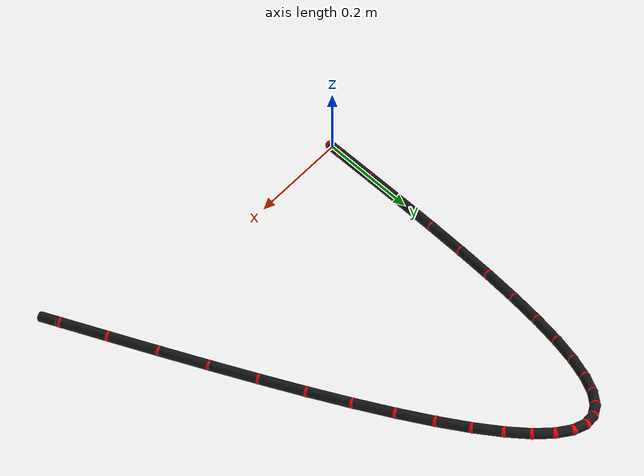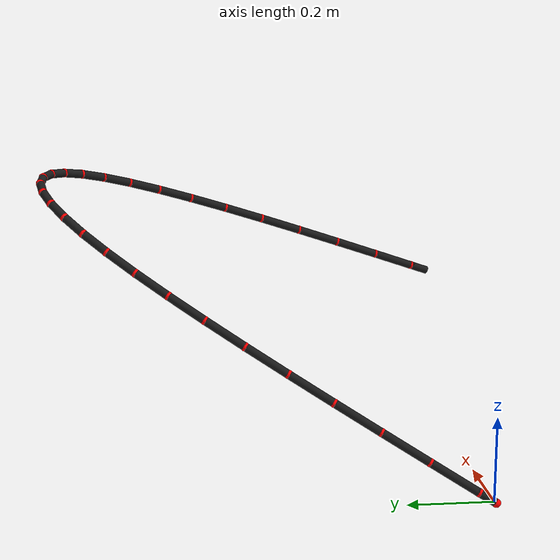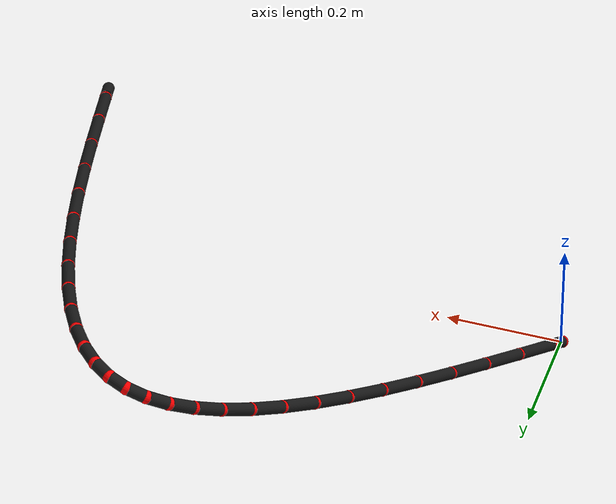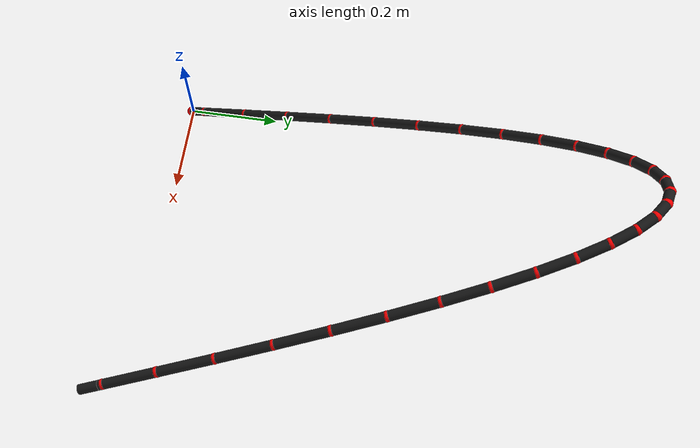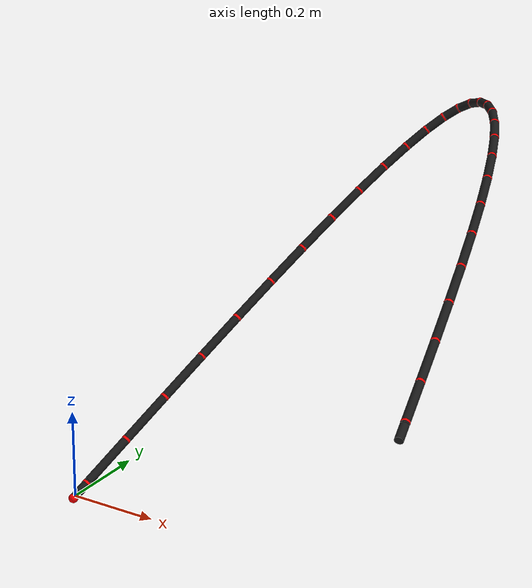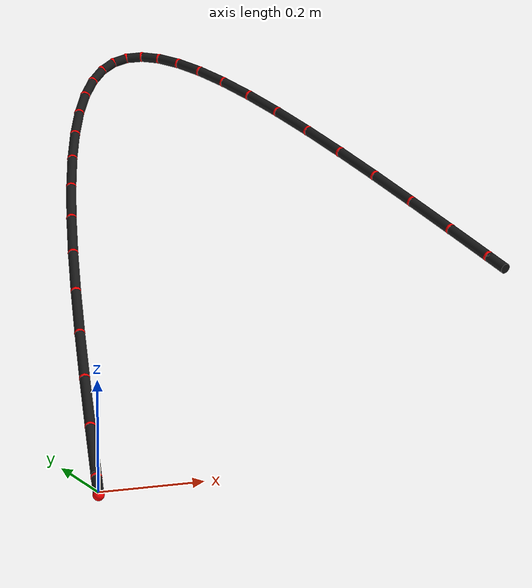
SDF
<?xml version="1.0" ?>
<sdf version="1.9">
    <model name="tether">
        <self_collide>true</self_collide>

        <link name="link_0">
            <pose>0.0040 0.0157 0.0096 0 1.0359 1.3214</pose>
            <velocity_decay>
                <linear>0.5</linear>
                <angular>0.5</angular>
            </velocity_decay>
            <inertial>
                <mass>0.02</mass>
                <inertia>
                    <ixx>0.1000</ixx><ixy>0</ixy><ixz>0</ixz>
                    <iyy>0.1000</iyy><iyz>0</iyz>
                    <izz>0.0100</izz>
                </inertia>
            </inertial>
            <visual name="visual_cylinder">
                <geometry><cylinder><radius>0.01</radius><length>0.0500</length></cylinder></geometry>
                <material><ambient>0.2 0.2 0.2 1</ambient><diffuse>0.1 0.1 0.1 1</diffuse></material>
            </visual>
            <visual name="visual_joint">
                <pose>0 0 -0.0250 0 0 0</pose>
                <geometry><sphere><radius>0.0105</radius></sphere></geometry>
                <material><ambient>1 0 0 1</ambient><diffuse>1 0 0 1</diffuse></material>
            </visual>
            <collision name="collision">
                <geometry><cylinder><radius>0.01</radius><length>0.0500</length></cylinder></geometry>
                <surface>
                    <contact><collide_bitmask>0x02</collide_bitmask></contact>
                </surface>
            </collision>
        </link>
        <link name="link_1">
            <pose>0.0220 0.0862 0.0527 0 1.0357 1.3204</pose>
            <velocity_decay>
                <linear>0.5</linear>
                <angular>0.5</angular>
            </velocity_decay>
            <inertial>
                <mass>0.02</mass>
                <inertia>
                    <ixx>0.1000</ixx><ixy>0</ixy><ixz>0</ixz>
                    <iyy>0.1000</iyy><iyz>0</iyz>
                    <izz>0.0100</izz>
                </inertia>
            </inertial>
            <visual name="visual_cylinder">
                <geometry><cylinder><radius>0.01</radius><length>0.1314</length></cylinder></geometry>
                <material><ambient>0.2 0.2 0.2 1</ambient><diffuse>0.1 0.1 0.1 1</diffuse></material>
            </visual>
            <visual name="visual_joint">
                <pose>0 0 -0.0657 0 0 0</pose>
                <geometry><sphere><radius>0.0105</radius></sphere></geometry>
                <material><ambient>1 0 0 1</ambient><diffuse>1 0 0 1</diffuse></material>
            </visual>
            <collision name="collision">
                <geometry><cylinder><radius>0.01</radius><length>0.1314</length></cylinder></geometry>
                <surface>
                    <contact><collide_bitmask>0x02</collide_bitmask></contact>
                </surface>
            </collision>
        </link>
        <joint name="joint_0_1" type="ball">
            <parent>link_0</parent>
            <child>link_1</child>
            <pose>0 0 -0.0657 0 0 0</pose>
            <dynamics>
                <damping>2.0</damping>
                <friction>0.1</friction>
            </dynamics>
        </joint>
        <link name="link_2">
            <pose>0.0500 0.1948 0.1193 0 1.0348 1.3166</pose>
            <velocity_decay>
                <linear>0.5</linear>
                <angular>0.5</angular>
            </velocity_decay>
            <inertial>
                <mass>0.02</mass>
                <inertia>
                    <ixx>0.1000</ixx><ixy>0</ixy><ixz>0</ixz>
                    <iyy>0.1000</iyy><iyz>0</iyz>
                    <izz>0.0100</izz>
                </inertia>
            </inertial>
            <visual name="visual_cylinder">
                <geometry><cylinder><radius>0.01</radius><length>0.1295</length></cylinder></geometry>
                <material><ambient>0.2 0.2 0.2 1</ambient><diffuse>0.1 0.1 0.1 1</diffuse></material>
            </visual>
            <visual name="visual_joint">
                <pose>0 0 -0.0648 0 0 0</pose>
                <geometry><sphere><radius>0.0105</radius></sphere></geometry>
                <material><ambient>1 0 0 1</ambient><diffuse>1 0 0 1</diffuse></material>
            </visual>
            <collision name="collision">
                <geometry><cylinder><radius>0.01</radius><length>0.1295</length></cylinder></geometry>
                <surface>
                    <contact><collide_bitmask>0x02</collide_bitmask></contact>
                </surface>
            </collision>
        </link>
        <joint name="joint_1_2" type="ball">
            <parent>link_1</parent>
            <child>link_2</child>
            <pose>0 0 -0.0648 0 0 0</pose>
            <dynamics>
                <damping>2.0</damping>
                <friction>0.1</friction>
            </dynamics>
        </joint>
        <link name="link_3">
            <pose>0.0780 0.3011 0.1847 0 1.0333 1.3097</pose>
            <velocity_decay>
                <linear>0.5</linear>
                <angular>0.5</angular>
            </velocity_decay>
            <inertial>
                <mass>0.02</mass>
                <inertia>
                    <ixx>0.1000</ixx><ixy>0</ixy><ixz>0</ixz>
                    <iyy>0.1000</iyy><iyz>0</iyz>
                    <izz>0.0100</izz>
                </inertia>
            </inertial>
            <visual name="visual_cylinder">
                <geometry><cylinder><radius>0.01</radius><length>0.1263</length></cylinder></geometry>
                <material><ambient>0.2 0.2 0.2 1</ambient><diffuse>0.1 0.1 0.1 1</diffuse></material>
            </visual>
            <visual name="visual_joint">
                <pose>0 0 -0.0631 0 0 0</pose>
                <geometry><sphere><radius>0.0105</radius></sphere></geometry>
                <material><ambient>1 0 0 1</ambient><diffuse>1 0 0 1</diffuse></material>
            </visual>
            <collision name="collision">
                <geometry><cylinder><radius>0.01</radius><length>0.1263</length></cylinder></geometry>
                <surface>
                    <contact><collide_bitmask>0x02</collide_bitmask></contact>
                </surface>
            </collision>
        </link>
        <joint name="joint_2_3" type="ball">
            <parent>link_2</parent>
            <child>link_3</child>
            <pose>0 0 -0.0631 0 0 0</pose>
            <dynamics>
                <damping>2.0</damping>
                <friction>0.1</friction>
            </dynamics>
        </joint>
        <link name="link_4">
            <pose>0.1060 0.4037 0.2482 0 1.0311 1.2991</pose>
            <velocity_decay>
                <linear>0.5</linear>
                <angular>0.5</angular>
            </velocity_decay>
            <inertial>
                <mass>0.02</mass>
                <inertia>
                    <ixx>0.1000</ixx><ixy>0</ixy><ixz>0</ixz>
                    <iyy>0.1000</iyy><iyz>0</iyz>
                    <izz>0.0100</izz>
                </inertia>
            </inertial>
            <visual name="visual_cylinder">
                <geometry><cylinder><radius>0.01</radius><length>0.1216</length></cylinder></geometry>
                <material><ambient>0.2 0.2 0.2 1</ambient><diffuse>0.1 0.1 0.1 1</diffuse></material>
            </visual>
            <visual name="visual_joint">
                <pose>0 0 -0.0608 0 0 0</pose>
                <geometry><sphere><radius>0.0105</radius></sphere></geometry>
                <material><ambient>1 0 0 1</ambient><diffuse>1 0 0 1</diffuse></material>
            </visual>
            <collision name="collision">
                <geometry><cylinder><radius>0.01</radius><length>0.1216</length></cylinder></geometry>
                <surface>
                    <contact><collide_bitmask>0x02</collide_bitmask></contact>
                </surface>
            </collision>
        </link>
        <joint name="joint_3_4" type="ball">
            <parent>link_3</parent>
            <child>link_4</child>
            <pose>0 0 -0.0608 0 0 0</pose>
            <dynamics>
                <damping>2.0</damping>
                <friction>0.1</friction>
            </dynamics>
        </joint>
        <link name="link_5">
            <pose>0.1340 0.5015 0.3094 0 1.0280 1.2843</pose>
            <velocity_decay>
                <linear>0.5</linear>
                <angular>0.5</angular>
            </velocity_decay>
            <inertial>
                <mass>0.02</mass>
                <inertia>
                    <ixx>0.1000</ixx><ixy>0</ixy><ixz>0</ixz>
                    <iyy>0.1000</iyy><iyz>0</iyz>
                    <izz>0.0100</izz>
                </inertia>
            </inertial>
            <visual name="visual_cylinder">
                <geometry><cylinder><radius>0.01</radius><length>0.1157</length></cylinder></geometry>
                <material><ambient>0.2 0.2 0.2 1</ambient><diffuse>0.1 0.1 0.1 1</diffuse></material>
            </visual>
            <visual name="visual_joint">
                <pose>0 0 -0.0579 0 0 0</pose>
                <geometry><sphere><radius>0.0105</radius></sphere></geometry>
                <material><ambient>1 0 0 1</ambient><diffuse>1 0 0 1</diffuse></material>
            </visual>
            <collision name="collision">
                <geometry><cylinder><radius>0.01</radius><length>0.1157</length></cylinder></geometry>
                <surface>
                    <contact><collide_bitmask>0x02</collide_bitmask></contact>
                </surface>
            </collision>
        </link>
        <joint name="joint_4_5" type="ball">
            <parent>link_4</parent>
            <child>link_5</child>
            <pose>0 0 -0.0579 0 0 0</pose>
            <dynamics>
                <damping>2.0</damping>
                <friction>0.1</friction>
            </dynamics>
        </joint>
        <link name="link_6">
            <pose>0.1620 0.5932 0.3675 0 1.0240 1.2641</pose>
            <velocity_decay>
                <linear>0.5</linear>
                <angular>0.5</angular>
            </velocity_decay>
            <inertial>
                <mass>0.02</mass>
                <inertia>
                    <ixx>0.1000</ixx><ixy>0</ixy><ixz>0</ixz>
                    <iyy>0.1000</iyy><iyz>0</iyz>
                    <izz>0.0100</izz>
                </inertia>
            </inertial>
            <visual name="visual_cylinder">
                <geometry><cylinder><radius>0.01</radius><length>0.1086</length></cylinder></geometry>
                <material><ambient>0.2 0.2 0.2 1</ambient><diffuse>0.1 0.1 0.1 1</diffuse></material>
            </visual>
            <visual name="visual_joint">
                <pose>0 0 -0.0543 0 0 0</pose>
                <geometry><sphere><radius>0.0105</radius></sphere></geometry>
                <material><ambient>1 0 0 1</ambient><diffuse>1 0 0 1</diffuse></material>
            </visual>
            <collision name="collision">
                <geometry><cylinder><radius>0.01</radius><length>0.1086</length></cylinder></geometry>
                <surface>
                    <contact><collide_bitmask>0x02</collide_bitmask></contact>
                </surface>
            </collision>
        </link>
        <joint name="joint_5_6" type="ball">
            <parent>link_5</parent>
            <child>link_6</child>
            <pose>0 0 -0.0543 0 0 0</pose>
            <dynamics>
                <damping>2.0</damping>
                <friction>0.1</friction>
            </dynamics>
        </joint>
        <link name="link_7">
            <pose>0.1900 0.6778 0.4220 0 1.0189 1.2368</pose>
            <velocity_decay>
                <linear>0.5</linear>
                <angular>0.5</angular>
            </velocity_decay>
            <inertial>
                <mass>0.02</mass>
                <inertia>
                    <ixx>0.1000</ixx><ixy>0</ixy><ixz>0</ixz>
                    <iyy>0.1000</iyy><iyz>0</iyz>
                    <izz>0.0100</izz>
                </inertia>
            </inertial>
            <visual name="visual_cylinder">
                <geometry><cylinder><radius>0.01</radius><length>0.1003</length></cylinder></geometry>
                <material><ambient>0.2 0.2 0.2 1</ambient><diffuse>0.1 0.1 0.1 1</diffuse></material>
            </visual>
            <visual name="visual_joint">
                <pose>0 0 -0.0502 0 0 0</pose>
                <geometry><sphere><radius>0.0105</radius></sphere></geometry>
                <material><ambient>1 0 0 1</ambient><diffuse>1 0 0 1</diffuse></material>
            </visual>
            <collision name="collision">
                <geometry><cylinder><radius>0.01</radius><length>0.1003</length></cylinder></geometry>
                <surface>
                    <contact><collide_bitmask>0x02</collide_bitmask></contact>
                </surface>
            </collision>
        </link>
        <joint name="joint_6_7" type="ball">
            <parent>link_6</parent>
            <child>link_7</child>
            <pose>0 0 -0.0502 0 0 0</pose>
            <dynamics>
                <damping>2.0</damping>
                <friction>0.1</friction>
            </dynamics>
        </joint>
        <link name="link_8">
            <pose>0.2180 0.7541 0.4724 0 1.0125 1.2000</pose>
            <velocity_decay>
                <linear>0.5</linear>
                <angular>0.5</angular>
            </velocity_decay>
            <inertial>
                <mass>0.02</mass>
                <inertia>
                    <ixx>0.1000</ixx><ixy>0</ixy><ixz>0</ixz>
                    <iyy>0.1000</iyy><iyz>0</iyz>
                    <izz>0.0100</izz>
                </inertia>
            </inertial>
            <visual name="visual_cylinder">
                <geometry><cylinder><radius>0.01</radius><length>0.0911</length></cylinder></geometry>
                <material><ambient>0.2 0.2 0.2 1</ambient><diffuse>0.1 0.1 0.1 1</diffuse></material>
            </visual>
            <visual name="visual_joint">
                <pose>0 0 -0.0456 0 0 0</pose>
                <geometry><sphere><radius>0.0105</radius></sphere></geometry>
                <material><ambient>1 0 0 1</ambient><diffuse>1 0 0 1</diffuse></material>
            </visual>
            <collision name="collision">
                <geometry><cylinder><radius>0.01</radius><length>0.0911</length></cylinder></geometry>
                <surface>
                    <contact><collide_bitmask>0x02</collide_bitmask></contact>
                </surface>
            </collision>
        </link>
        <joint name="joint_7_8" type="ball">
            <parent>link_7</parent>
            <child>link_8</child>
            <pose>0 0 -0.0456 0 0 0</pose>
            <dynamics>
                <damping>2.0</damping>
                <friction>0.1</friction>
            </dynamics>
        </joint>
        <link name="link_9">
            <pose>0.2460 0.8214 0.5183 0 1.0049 1.1495</pose>
            <velocity_decay>
                <linear>0.5</linear>
                <angular>0.5</angular>
            </velocity_decay>
            <inertial>
                <mass>0.02</mass>
                <inertia>
                    <ixx>0.1000</ixx><ixy>0</ixy><ixz>0</ixz>
                    <iyy>0.1000</iyy><iyz>0</iyz>
                    <izz>0.0100</izz>
                </inertia>
            </inertial>
            <visual name="visual_cylinder">
                <geometry><cylinder><radius>0.01</radius><length>0.0811</length></cylinder></geometry>
                <material><ambient>0.2 0.2 0.2 1</ambient><diffuse>0.1 0.1 0.1 1</diffuse></material>
            </visual>
            <visual name="visual_joint">
                <pose>0 0 -0.0406 0 0 0</pose>
                <geometry><sphere><radius>0.0105</radius></sphere></geometry>
                <material><ambient>1 0 0 1</ambient><diffuse>1 0 0 1</diffuse></material>
            </visual>
            <collision name="collision">
                <geometry><cylinder><radius>0.01</radius><length>0.0811</length></cylinder></geometry>
                <surface>
                    <contact><collide_bitmask>0x02</collide_bitmask></contact>
                </surface>
            </collision>
        </link>
        <joint name="joint_8_9" type="ball">
            <parent>link_8</parent>
            <child>link_9</child>
            <pose>0 0 -0.0406 0 0 0</pose>
            <dynamics>
                <damping>2.0</damping>
                <friction>0.1</friction>
            </dynamics>
        </joint>
        <link name="link_10">
            <pose>0.2740 0.8787 0.5592 0 0.9962 1.0784</pose>
            <velocity_decay>
                <linear>0.5</linear>
                <angular>0.5</angular>
            </velocity_decay>
            <inertial>
                <mass>0.02</mass>
                <inertia>
                    <ixx>0.1000</ixx><ixy>0</ixy><ixz>0</ixz>
                    <iyy>0.1000</iyy><iyz>0</iyz>
                    <izz>0.0100</izz>
                </inertia>
            </inertial>
            <visual name="visual_cylinder">
                <geometry><cylinder><radius>0.01</radius><length>0.0706</length></cylinder></geometry>
                <material><ambient>0.2 0.2 0.2 1</ambient><diffuse>0.1 0.1 0.1 1</diffuse></material>
            </visual>
            <visual name="visual_joint">
                <pose>0 0 -0.0353 0 0 0</pose>
                <geometry><sphere><radius>0.0105</radius></sphere></geometry>
                <material><ambient>1 0 0 1</ambient><diffuse>1 0 0 1</diffuse></material>
            </visual>
            <collision name="collision">
                <geometry><cylinder><radius>0.01</radius><length>0.0706</length></cylinder></geometry>
                <surface>
                    <contact><collide_bitmask>0x02</collide_bitmask></contact>
                </surface>
            </collision>
        </link>
        <joint name="joint_9_10" type="ball">
            <parent>link_9</parent>
            <child>link_10</child>
            <pose>0 0 -0.0353 0 0 0</pose>
            <dynamics>
                <damping>2.0</damping>
                <friction>0.1</friction>
            </dynamics>
        </joint>
        <link name="link_11">
            <pose>0.3020 0.9255 0.5949 0 0.9878 0.9745</pose>
            <velocity_decay>
                <linear>0.5</linear>
                <angular>0.5</angular>
            </velocity_decay>
            <inertial>
                <mass>0.02</mass>
                <inertia>
                    <ixx>0.1000</ixx><ixy>0</ixy><ixz>0</ixz>
                    <iyy>0.1000</iyy><iyz>0</iyz>
                    <izz>0.0100</izz>
                </inertia>
            </inertial>
            <visual name="visual_cylinder">
                <geometry><cylinder><radius>0.01</radius><length>0.0597</length></cylinder></geometry>
                <material><ambient>0.2 0.2 0.2 1</ambient><diffuse>0.1 0.1 0.1 1</diffuse></material>
            </visual>
            <visual name="visual_joint">
                <pose>0 0 -0.0299 0 0 0</pose>
                <geometry><sphere><radius>0.0105</radius></sphere></geometry>
                <material><ambient>1 0 0 1</ambient><diffuse>1 0 0 1</diffuse></material>
            </visual>
            <collision name="collision">
                <geometry><cylinder><radius>0.01</radius><length>0.0597</length></cylinder></geometry>
                <surface>
                    <contact><collide_bitmask>0x02</collide_bitmask></contact>
                </surface>
            </collision>
        </link>
        <joint name="joint_10_11" type="ball">
            <parent>link_10</parent>
            <child>link_11</child>
            <pose>0 0 -0.0299 0 0 0</pose>
            <dynamics>
                <damping>2.0</damping>
                <friction>0.1</friction>
            </dynamics>
        </joint>
        <link name="link_12">
            <pose>0.3300 0.9610 0.6249 0 0.9847 0.8171</pose>
            <velocity_decay>
                <linear>0.5</linear>
                <angular>0.5</angular>
            </velocity_decay>
            <inertial>
                <mass>0.02</mass>
                <inertia>
                    <ixx>0.1000</ixx><ixy>0</ixy><ixz>0</ixz>
                    <iyy>0.1000</iyy><iyz>0</iyz>
                    <izz>0.0100</izz>
                </inertia>
            </inertial>
            <visual name="visual_cylinder">
                <geometry><cylinder><radius>0.01</radius><length>0.0491</length></cylinder></geometry>
                <material><ambient>0.2 0.2 0.2 1</ambient><diffuse>0.1 0.1 0.1 1</diffuse></material>
            </visual>
            <visual name="visual_joint">
                <pose>0 0 -0.0246 0 0 0</pose>
                <geometry><sphere><radius>0.0105</radius></sphere></geometry>
                <material><ambient>1 0 0 1</ambient><diffuse>1 0 0 1</diffuse></material>
            </visual>
            <collision name="collision">
                <geometry><cylinder><radius>0.01</radius><length>0.0491</length></cylinder></geometry>
                <surface>
                    <contact><collide_bitmask>0x02</collide_bitmask></contact>
                </surface>
            </collision>
        </link>
        <joint name="joint_11_12" type="ball">
            <parent>link_11</parent>
            <child>link_12</child>
            <pose>0 0 -0.0246 0 0 0</pose>
            <dynamics>
                <damping>2.0</damping>
                <friction>0.1</friction>
            </dynamics>
        </joint>
        <link name="link_13">
            <pose>0.3580 0.9849 0.6491 0 1.0025 0.5725</pose>
            <velocity_decay>
                <linear>0.5</linear>
                <angular>0.5</angular>
            </velocity_decay>
            <inertial>
                <mass>0.02</mass>
                <inertia>
                    <ixx>0.1000</ixx><ixy>0</ixy><ixz>0</ixz>
                    <iyy>0.1000</iyy><iyz>0</iyz>
                    <izz>0.0100</izz>
                </inertia>
            </inertial>
            <visual name="visual_cylinder">
                <geometry><cylinder><radius>0.01</radius><length>0.0395</length></cylinder></geometry>
                <material><ambient>0.2 0.2 0.2 1</ambient><diffuse>0.1 0.1 0.1 1</diffuse></material>
            </visual>
            <visual name="visual_joint">
                <pose>0 0 -0.0198 0 0 0</pose>
                <geometry><sphere><radius>0.0105</radius></sphere></geometry>
                <material><ambient>1 0 0 1</ambient><diffuse>1 0 0 1</diffuse></material>
            </visual>
            <collision name="collision">
                <geometry><cylinder><radius>0.01</radius><length>0.0395</length></cylinder></geometry>
                <surface>
                    <contact><collide_bitmask>0x02</collide_bitmask></contact>
                </surface>
            </collision>
        </link>
        <joint name="joint_12_13" type="ball">
            <parent>link_12</parent>
            <child>link_13</child>
            <pose>0 0 -0.0198 0 0 0</pose>
            <dynamics>
                <damping>2.0</damping>
                <friction>0.1</friction>
            </dynamics>
        </joint>
        <link name="link_14">
            <pose>0.3860 0.9970 0.6674 0 1.0810 0.2124</pose>
            <velocity_decay>
                <linear>0.5</linear>
                <angular>0.5</angular>
            </velocity_decay>
            <inertial>
                <mass>0.02</mass>
                <inertia>
                    <ixx>0.1000</ixx><ixy>0</ixy><ixz>0</ixz>
                    <iyy>0.1000</iyy><iyz>0</iyz>
                    <izz>0.0100</izz>
                </inertia>
            </inertial>
            <visual name="visual_cylinder">
                <geometry><cylinder><radius>0.01</radius><length>0.0325</length></cylinder></geometry>
                <material><ambient>0.2 0.2 0.2 1</ambient><diffuse>0.1 0.1 0.1 1</diffuse></material>
            </visual>
            <visual name="visual_joint">
                <pose>0 0 -0.0162 0 0 0</pose>
                <geometry><sphere><radius>0.0105</radius></sphere></geometry>
                <material><ambient>1 0 0 1</ambient><diffuse>1 0 0 1</diffuse></material>
            </visual>
            <collision name="collision">
                <geometry><cylinder><radius>0.01</radius><length>0.0325</length></cylinder></geometry>
                <surface>
                    <contact><collide_bitmask>0x02</collide_bitmask></contact>
                </surface>
            </collision>
        </link>
        <joint name="joint_13_14" type="ball">
            <parent>link_13</parent>
            <child>link_14</child>
            <pose>0 0 -0.0162 0 0 0</pose>
            <dynamics>
                <damping>2.0</damping>
                <friction>0.1</friction>
            </dynamics>
        </joint>
        <link name="link_15">
            <pose>0.4140 0.9970 0.6796 0 1.2591 -0.2124</pose>
            <velocity_decay>
                <linear>0.5</linear>
                <angular>0.5</angular>
            </velocity_decay>
            <inertial>
                <mass>0.02</mass>
                <inertia>
                    <ixx>0.1000</ixx><ixy>0</ixy><ixz>0</ixz>
                    <iyy>0.1000</iyy><iyz>0</iyz>
                    <izz>0.0100</izz>
                </inertia>
            </inertial>
            <visual name="visual_cylinder">
                <geometry><cylinder><radius>0.01</radius><length>0.0301</length></cylinder></geometry>
                <material><ambient>0.2 0.2 0.2 1</ambient><diffuse>0.1 0.1 0.1 1</diffuse></material>
            </visual>
            <visual name="visual_joint">
                <pose>0 0 -0.0150 0 0 0</pose>
                <geometry><sphere><radius>0.0105</radius></sphere></geometry>
                <material><ambient>1 0 0 1</ambient><diffuse>1 0 0 1</diffuse></material>
            </visual>
            <collision name="collision">
                <geometry><cylinder><radius>0.01</radius><length>0.0301</length></cylinder></geometry>
                <surface>
                    <contact><collide_bitmask>0x02</collide_bitmask></contact>
                </surface>
            </collision>
        </link>
        <joint name="joint_14_15" type="ball">
            <parent>link_14</parent>
            <child>link_15</child>
            <pose>0 0 -0.0150 0 0 0</pose>
            <dynamics>
                <damping>2.0</damping>
                <friction>0.1</friction>
            </dynamics>
        </joint>
        <link name="link_16">
            <pose>0.4420 0.9849 0.6858 0 1.4742 -0.5725</pose>
            <velocity_decay>
                <linear>0.5</linear>
                <angular>0.5</angular>
            </velocity_decay>
            <inertial>
                <mass>0.02</mass>
                <inertia>
                    <ixx>0.1000</ixx><ixy>0</ixy><ixz>0</ixz>
                    <iyy>0.1000</iyy><iyz>0</iyz>
                    <izz>0.0100</izz>
                </inertia>
            </inertial>
            <visual name="visual_cylinder">
                <geometry><cylinder><radius>0.01</radius><length>0.0335</length></cylinder></geometry>
                <material><ambient>0.2 0.2 0.2 1</ambient><diffuse>0.1 0.1 0.1 1</diffuse></material>
            </visual>
            <visual name="visual_joint">
                <pose>0 0 -0.0167 0 0 0</pose>
                <geometry><sphere><radius>0.0105</radius></sphere></geometry>
                <material><ambient>1 0 0 1</ambient><diffuse>1 0 0 1</diffuse></material>
            </visual>
            <collision name="collision">
                <geometry><cylinder><radius>0.01</radius><length>0.0335</length></cylinder></geometry>
                <surface>
                    <contact><collide_bitmask>0x02</collide_bitmask></contact>
                </surface>
            </collision>
        </link>
        <joint name="joint_15_16" type="ball">
            <parent>link_15</parent>
            <child>link_16</child>
            <pose>0 0 -0.0167 0 0 0</pose>
            <dynamics>
                <damping>2.0</damping>
                <friction>0.1</friction>
            </dynamics>
        </joint>
        <link name="link_17">
            <pose>0.4700 0.9610 0.6861 0 1.6359 -0.8171</pose>
            <velocity_decay>
                <linear>0.5</linear>
                <angular>0.5</angular>
            </velocity_decay>
            <inertial>
                <mass>0.02</mass>
                <inertia>
                    <ixx>0.1000</ixx><ixy>0</ixy><ixz>0</ixz>
                    <iyy>0.1000</iyy><iyz>0</iyz>
                    <izz>0.0100</izz>
                </inertia>
            </inertial>
            <visual name="visual_cylinder">
                <geometry><cylinder><radius>0.01</radius><length>0.0410</length></cylinder></geometry>
                <material><ambient>0.2 0.2 0.2 1</ambient><diffuse>0.1 0.1 0.1 1</diffuse></material>
            </visual>
            <visual name="visual_joint">
                <pose>0 0 -0.0205 0 0 0</pose>
                <geometry><sphere><radius>0.0105</radius></sphere></geometry>
                <material><ambient>1 0 0 1</ambient><diffuse>1 0 0 1</diffuse></material>
            </visual>
            <collision name="collision">
                <geometry><cylinder><radius>0.01</radius><length>0.0410</length></cylinder></geometry>
                <surface>
                    <contact><collide_bitmask>0x02</collide_bitmask></contact>
                </surface>
            </collision>
        </link>
        <joint name="joint_16_17" type="ball">
            <parent>link_16</parent>
            <child>link_17</child>
            <pose>0 0 -0.0205 0 0 0</pose>
            <dynamics>
                <damping>2.0</damping>
                <friction>0.1</friction>
            </dynamics>
        </joint>
        <link name="link_18">
            <pose>0.4980 0.9255 0.6806 0 1.7373 -0.9745</pose>
            <velocity_decay>
                <linear>0.5</linear>
                <angular>0.5</angular>
            </velocity_decay>
            <inertial>
                <mass>0.02</mass>
                <inertia>
                    <ixx>0.1000</ixx><ixy>0</ixy><ixz>0</ixz>
                    <iyy>0.1000</iyy><iyz>0</iyz>
                    <izz>0.0100</izz>
                </inertia>
            </inertial>
            <visual name="visual_cylinder">
                <geometry><cylinder><radius>0.01</radius><length>0.0506</length></cylinder></geometry>
                <material><ambient>0.2 0.2 0.2 1</ambient><diffuse>0.1 0.1 0.1 1</diffuse></material>
            </visual>
            <visual name="visual_joint">
                <pose>0 0 -0.0253 0 0 0</pose>
                <geometry><sphere><radius>0.0105</radius></sphere></geometry>
                <material><ambient>1 0 0 1</ambient><diffuse>1 0 0 1</diffuse></material>
            </visual>
            <collision name="collision">
                <geometry><cylinder><radius>0.01</radius><length>0.0506</length></cylinder></geometry>
                <surface>
                    <contact><collide_bitmask>0x02</collide_bitmask></contact>
                </surface>
            </collision>
        </link>
        <joint name="joint_17_18" type="ball">
            <parent>link_17</parent>
            <child>link_18</child>
            <pose>0 0 -0.0253 0 0 0</pose>
            <dynamics>
                <damping>2.0</damping>
                <friction>0.1</friction>
            </dynamics>
        </joint>
        <link name="link_19">
            <pose>0.5260 0.8787 0.6695 0 1.8004 -1.0784</pose>
            <velocity_decay>
                <linear>0.5</linear>
                <angular>0.5</angular>
            </velocity_decay>
            <inertial>
                <mass>0.02</mass>
                <inertia>
                    <ixx>0.1000</ixx><ixy>0</ixy><ixz>0</ixz>
                    <iyy>0.1000</iyy><iyz>0</iyz>
                    <izz>0.0100</izz>
                </inertia>
            </inertial>
            <visual name="visual_cylinder">
                <geometry><cylinder><radius>0.01</radius><length>0.0608</length></cylinder></geometry>
                <material><ambient>0.2 0.2 0.2 1</ambient><diffuse>0.1 0.1 0.1 1</diffuse></material>
            </visual>
            <visual name="visual_joint">
                <pose>0 0 -0.0304 0 0 0</pose>
                <geometry><sphere><radius>0.0105</radius></sphere></geometry>
                <material><ambient>1 0 0 1</ambient><diffuse>1 0 0 1</diffuse></material>
            </visual>
            <collision name="collision">
                <geometry><cylinder><radius>0.01</radius><length>0.0608</length></cylinder></geometry>
                <surface>
                    <contact><collide_bitmask>0x02</collide_bitmask></contact>
                </surface>
            </collision>
        </link>
        <joint name="joint_18_19" type="ball">
            <parent>link_18</parent>
            <child>link_19</child>
            <pose>0 0 -0.0304 0 0 0</pose>
            <dynamics>
                <damping>2.0</damping>
                <friction>0.1</friction>
            </dynamics>
        </joint>
        <link name="link_20">
            <pose>0.5540 0.8214 0.6531 0 1.8414 -1.1495</pose>
            <velocity_decay>
                <linear>0.5</linear>
                <angular>0.5</angular>
            </velocity_decay>
            <inertial>
                <mass>0.02</mass>
                <inertia>
                    <ixx>0.1000</ixx><ixy>0</ixy><ixz>0</ixz>
                    <iyy>0.1000</iyy><iyz>0</iyz>
                    <izz>0.0100</izz>
                </inertia>
            </inertial>
            <visual name="visual_cylinder">
                <geometry><cylinder><radius>0.01</radius><length>0.0711</length></cylinder></geometry>
                <material><ambient>0.2 0.2 0.2 1</ambient><diffuse>0.1 0.1 0.1 1</diffuse></material>
            </visual>
            <visual name="visual_joint">
                <pose>0 0 -0.0355 0 0 0</pose>
                <geometry><sphere><radius>0.0105</radius></sphere></geometry>
                <material><ambient>1 0 0 1</ambient><diffuse>1 0 0 1</diffuse></material>
            </visual>
            <collision name="collision">
                <geometry><cylinder><radius>0.01</radius><length>0.0711</length></cylinder></geometry>
                <surface>
                    <contact><collide_bitmask>0x02</collide_bitmask></contact>
                </surface>
            </collision>
        </link>
        <joint name="joint_19_20" type="ball">
            <parent>link_19</parent>
            <child>link_20</child>
            <pose>0 0 -0.0355 0 0 0</pose>
            <dynamics>
                <damping>2.0</damping>
                <friction>0.1</friction>
            </dynamics>
        </joint>
        <link name="link_21">
            <pose>0.5820 0.7541 0.6317 0 1.8691 -1.2000</pose>
            <velocity_decay>
                <linear>0.5</linear>
                <angular>0.5</angular>
            </velocity_decay>
            <inertial>
                <mass>0.02</mass>
                <inertia>
                    <ixx>0.1000</ixx><ixy>0</ixy><ixz>0</ixz>
                    <iyy>0.1000</iyy><iyz>0</iyz>
                    <izz>0.0100</izz>
                </inertia>
            </inertial>
            <visual name="visual_cylinder">
                <geometry><cylinder><radius>0.01</radius><length>0.0809</length></cylinder></geometry>
                <material><ambient>0.2 0.2 0.2 1</ambient><diffuse>0.1 0.1 0.1 1</diffuse></material>
            </visual>
            <visual name="visual_joint">
                <pose>0 0 -0.0404 0 0 0</pose>
                <geometry><sphere><radius>0.0105</radius></sphere></geometry>
                <material><ambient>1 0 0 1</ambient><diffuse>1 0 0 1</diffuse></material>
            </visual>
            <collision name="collision">
                <geometry><cylinder><radius>0.01</radius><length>0.0809</length></cylinder></geometry>
                <surface>
                    <contact><collide_bitmask>0x02</collide_bitmask></contact>
                </surface>
            </collision>
        </link>
        <joint name="joint_20_21" type="ball">
            <parent>link_20</parent>
            <child>link_21</child>
            <pose>0 0 -0.0404 0 0 0</pose>
            <dynamics>
                <damping>2.0</damping>
                <friction>0.1</friction>
            </dynamics>
        </joint>
        <link name="link_22">
            <pose>0.6100 0.6778 0.6058 0 1.8886 -1.2368</pose>
            <velocity_decay>
                <linear>0.5</linear>
                <angular>0.5</angular>
            </velocity_decay>
            <inertial>
                <mass>0.02</mass>
                <inertia>
                    <ixx>0.1000</ixx><ixy>0</ixy><ixz>0</ixz>
                    <iyy>0.1000</iyy><iyz>0</iyz>
                    <izz>0.0100</izz>
                </inertia>
            </inertial>
            <visual name="visual_cylinder">
                <geometry><cylinder><radius>0.01</radius><length>0.0899</length></cylinder></geometry>
                <material><ambient>0.2 0.2 0.2 1</ambient><diffuse>0.1 0.1 0.1 1</diffuse></material>
            </visual>
            <visual name="visual_joint">
                <pose>0 0 -0.0450 0 0 0</pose>
                <geometry><sphere><radius>0.0105</radius></sphere></geometry>
                <material><ambient>1 0 0 1</ambient><diffuse>1 0 0 1</diffuse></material>
            </visual>
            <collision name="collision">
                <geometry><cylinder><radius>0.01</radius><length>0.0899</length></cylinder></geometry>
                <surface>
                    <contact><collide_bitmask>0x02</collide_bitmask></contact>
                </surface>
            </collision>
        </link>
        <joint name="joint_21_22" type="ball">
            <parent>link_21</parent>
            <child>link_22</child>
            <pose>0 0 -0.0450 0 0 0</pose>
            <dynamics>
                <damping>2.0</damping>
                <friction>0.1</friction>
            </dynamics>
        </joint>
        <link name="link_23">
            <pose>0.6380 0.5932 0.5757 0 1.9026 -1.2641</pose>
            <velocity_decay>
                <linear>0.5</linear>
                <angular>0.5</angular>
            </velocity_decay>
            <inertial>
                <mass>0.02</mass>
                <inertia>
                    <ixx>0.1000</ixx><ixy>0</ixy><ixz>0</ixz>
                    <iyy>0.1000</iyy><iyz>0</iyz>
                    <izz>0.0100</izz>
                </inertia>
            </inertial>
            <visual name="visual_cylinder">
                <geometry><cylinder><radius>0.01</radius><length>0.0981</length></cylinder></geometry>
                <material><ambient>0.2 0.2 0.2 1</ambient><diffuse>0.1 0.1 0.1 1</diffuse></material>
            </visual>
            <visual name="visual_joint">
                <pose>0 0 -0.0490 0 0 0</pose>
                <geometry><sphere><radius>0.0105</radius></sphere></geometry>
                <material><ambient>1 0 0 1</ambient><diffuse>1 0 0 1</diffuse></material>
            </visual>
            <collision name="collision">
                <geometry><cylinder><radius>0.01</radius><length>0.0981</length></cylinder></geometry>
                <surface>
                    <contact><collide_bitmask>0x02</collide_bitmask></contact>
                </surface>
            </collision>
        </link>
        <joint name="joint_22_23" type="ball">
            <parent>link_22</parent>
            <child>link_23</child>
            <pose>0 0 -0.0490 0 0 0</pose>
            <dynamics>
                <damping>2.0</damping>
                <friction>0.1</friction>
            </dynamics>
        </joint>
        <link name="link_24">
            <pose>0.6660 0.5015 0.5421 0 1.9128 -1.2843</pose>
            <velocity_decay>
                <linear>0.5</linear>
                <angular>0.5</angular>
            </velocity_decay>
            <inertial>
                <mass>0.02</mass>
                <inertia>
                    <ixx>0.1000</ixx><ixy>0</ixy><ixz>0</ixz>
                    <iyy>0.1000</iyy><iyz>0</iyz>
                    <izz>0.0100</izz>
                </inertia>
            </inertial>
            <visual name="visual_cylinder">
                <geometry><cylinder><radius>0.01</radius><length>0.1052</length></cylinder></geometry>
                <material><ambient>0.2 0.2 0.2 1</ambient><diffuse>0.1 0.1 0.1 1</diffuse></material>
            </visual>
            <visual name="visual_joint">
                <pose>0 0 -0.0526 0 0 0</pose>
                <geometry><sphere><radius>0.0105</radius></sphere></geometry>
                <material><ambient>1 0 0 1</ambient><diffuse>1 0 0 1</diffuse></material>
            </visual>
            <collision name="collision">
                <geometry><cylinder><radius>0.01</radius><length>0.1052</length></cylinder></geometry>
                <surface>
                    <contact><collide_bitmask>0x02</collide_bitmask></contact>
                </surface>
            </collision>
        </link>
        <joint name="joint_23_24" type="ball">
            <parent>link_23</parent>
            <child>link_24</child>
            <pose>0 0 -0.0526 0 0 0</pose>
            <dynamics>
                <damping>2.0</damping>
                <friction>0.1</friction>
            </dynamics>
        </joint>
        <link name="link_25">
            <pose>0.6940 0.4037 0.5055 0 1.9201 -1.2991</pose>
            <velocity_decay>
                <linear>0.5</linear>
                <angular>0.5</angular>
            </velocity_decay>
            <inertial>
                <mass>0.02</mass>
                <inertia>
                    <ixx>0.1000</ixx><ixy>0</ixy><ixz>0</ixz>
                    <iyy>0.1000</iyy><iyz>0</iyz>
                    <izz>0.0100</izz>
                </inertia>
            </inertial>
            <visual name="visual_cylinder">
                <geometry><cylinder><radius>0.01</radius><length>0.1110</length></cylinder></geometry>
                <material><ambient>0.2 0.2 0.2 1</ambient><diffuse>0.1 0.1 0.1 1</diffuse></material>
            </visual>
            <visual name="visual_joint">
                <pose>0 0 -0.0555 0 0 0</pose>
                <geometry><sphere><radius>0.0105</radius></sphere></geometry>
                <material><ambient>1 0 0 1</ambient><diffuse>1 0 0 1</diffuse></material>
            </visual>
            <collision name="collision">
                <geometry><cylinder><radius>0.01</radius><length>0.1110</length></cylinder></geometry>
                <surface>
                    <contact><collide_bitmask>0x02</collide_bitmask></contact>
                </surface>
            </collision>
        </link>
        <joint name="joint_24_25" type="ball">
            <parent>link_24</parent>
            <child>link_25</child>
            <pose>0 0 -0.0555 0 0 0</pose>
            <dynamics>
                <damping>2.0</damping>
                <friction>0.1</friction>
            </dynamics>
        </joint>
        <link name="link_26">
            <pose>0.7220 0.3011 0.4664 0 1.9253 -1.3097</pose>
            <velocity_decay>
                <linear>0.5</linear>
                <angular>0.5</angular>
            </velocity_decay>
            <inertial>
                <mass>0.02</mass>
                <inertia>
                    <ixx>0.1000</ixx><ixy>0</ixy><ixz>0</ixz>
                    <iyy>0.1000</iyy><iyz>0</iyz>
                    <izz>0.0100</izz>
                </inertia>
            </inertial>
            <visual name="visual_cylinder">
                <geometry><cylinder><radius>0.01</radius><length>0.1157</length></cylinder></geometry>
                <material><ambient>0.2 0.2 0.2 1</ambient><diffuse>0.1 0.1 0.1 1</diffuse></material>
            </visual>
            <visual name="visual_joint">
                <pose>0 0 -0.0578 0 0 0</pose>
                <geometry><sphere><radius>0.0105</radius></sphere></geometry>
                <material><ambient>1 0 0 1</ambient><diffuse>1 0 0 1</diffuse></material>
            </visual>
            <collision name="collision">
                <geometry><cylinder><radius>0.01</radius><length>0.1157</length></cylinder></geometry>
                <surface>
                    <contact><collide_bitmask>0x02</collide_bitmask></contact>
                </surface>
            </collision>
        </link>
        <joint name="joint_25_26" type="ball">
            <parent>link_25</parent>
            <child>link_26</child>
            <pose>0 0 -0.0578 0 0 0</pose>
            <dynamics>
                <damping>2.0</damping>
                <friction>0.1</friction>
            </dynamics>
        </joint>
        <link name="link_27">
            <pose>0.7500 0.1948 0.4255 0 1.9286 -1.3166</pose>
            <velocity_decay>
                <linear>0.5</linear>
                <angular>0.5</angular>
            </velocity_decay>
            <inertial>
                <mass>0.02</mass>
                <inertia>
                    <ixx>0.1000</ixx><ixy>0</ixy><ixz>0</ixz>
                    <iyy>0.1000</iyy><iyz>0</iyz>
                    <izz>0.0100</izz>
                </inertia>
            </inertial>
            <visual name="visual_cylinder">
                <geometry><cylinder><radius>0.01</radius><length>0.1189</length></cylinder></geometry>
                <material><ambient>0.2 0.2 0.2 1</ambient><diffuse>0.1 0.1 0.1 1</diffuse></material>
            </visual>
            <visual name="visual_joint">
                <pose>0 0 -0.0594 0 0 0</pose>
                <geometry><sphere><radius>0.0105</radius></sphere></geometry>
                <material><ambient>1 0 0 1</ambient><diffuse>1 0 0 1</diffuse></material>
            </visual>
            <collision name="collision">
                <geometry><cylinder><radius>0.01</radius><length>0.1189</length></cylinder></geometry>
                <surface>
                    <contact><collide_bitmask>0x02</collide_bitmask></contact>
                </surface>
            </collision>
        </link>
        <joint name="joint_26_27" type="ball">
            <parent>link_26</parent>
            <child>link_27</child>
            <pose>0 0 -0.0594 0 0 0</pose>
            <dynamics>
                <damping>2.0</damping>
                <friction>0.1</friction>
            </dynamics>
        </joint>
        <link name="link_28">
            <pose>0.7780 0.0862 0.3835 0 1.9305 -1.3204</pose>
            <velocity_decay>
                <linear>0.5</linear>
                <angular>0.5</angular>
            </velocity_decay>
            <inertial>
                <mass>0.02</mass>
                <inertia>
                    <ixx>0.1000</ixx><ixy>0</ixy><ixz>0</ixz>
                    <iyy>0.1000</iyy><iyz>0</iyz>
                    <izz>0.0100</izz>
                </inertia>
            </inertial>
            <visual name="visual_cylinder">
                <geometry><cylinder><radius>0.01</radius><length>0.1207</length></cylinder></geometry>
                <material><ambient>0.2 0.2 0.2 1</ambient><diffuse>0.1 0.1 0.1 1</diffuse></material>
            </visual>
            <visual name="visual_joint">
                <pose>0 0 -0.0604 0 0 0</pose>
                <geometry><sphere><radius>0.0105</radius></sphere></geometry>
                <material><ambient>1 0 0 1</ambient><diffuse>1 0 0 1</diffuse></material>
            </visual>
            <collision name="collision">
                <geometry><cylinder><radius>0.01</radius><length>0.1207</length></cylinder></geometry>
                <surface>
                    <contact><collide_bitmask>0x02</collide_bitmask></contact>
                </surface>
            </collision>
        </link>
        <joint name="joint_27_28" type="ball">
            <parent>link_27</parent>
            <child>link_28</child>
            <pose>0 0 -0.0604 0 0 0</pose>
            <dynamics>
                <damping>2.0</damping>
                <friction>0.1</friction>
            </dynamics>
        </joint>
        <link name="link_29">
            <pose>0.7960 0.0157 0.3561 0 1.9309 -1.3214</pose>
            <velocity_decay>
                <linear>0.5</linear>
                <angular>0.5</angular>
            </velocity_decay>
            <inertial>
                <mass>0.02</mass>
                <inertia>
                    <ixx>0.1000</ixx><ixy>0</ixy><ixz>0</ixz>
                    <iyy>0.1000</iyy><iyz>0</iyz>
                    <izz>0.0100</izz>
                </inertia>
            </inertial>
            <visual name="visual_cylinder">
                <geometry><cylinder><radius>0.01</radius><length>0.0500</length></cylinder></geometry>
                <material><ambient>0.2 0.2 0.2 1</ambient><diffuse>0.1 0.1 0.1 1</diffuse></material>
            </visual>
            <visual name="visual_joint">
                <pose>0 0 -0.0250 0 0 0</pose>
                <geometry><sphere><radius>0.0105</radius></sphere></geometry>
                <material><ambient>1 0 0 1</ambient><diffuse>1 0 0 1</diffuse></material>
            </visual>
            <collision name="collision">
                <geometry><cylinder><radius>0.01</radius><length>0.0500</length></cylinder></geometry>
                <surface>
                    <contact><collide_bitmask>0x02</collide_bitmask></contact>
                </surface>
            </collision>
        </link>
        <joint name="joint_28_29" type="ball">
            <parent>link_28</parent>
            <child>link_29</child>
            <pose>0 0 -0.0250 0 0 0</pose>
            <dynamics>
                <damping>2.0</damping>
                <friction>0.1</friction>
            </dynamics>
        </joint>
    </model>
</sdf>
